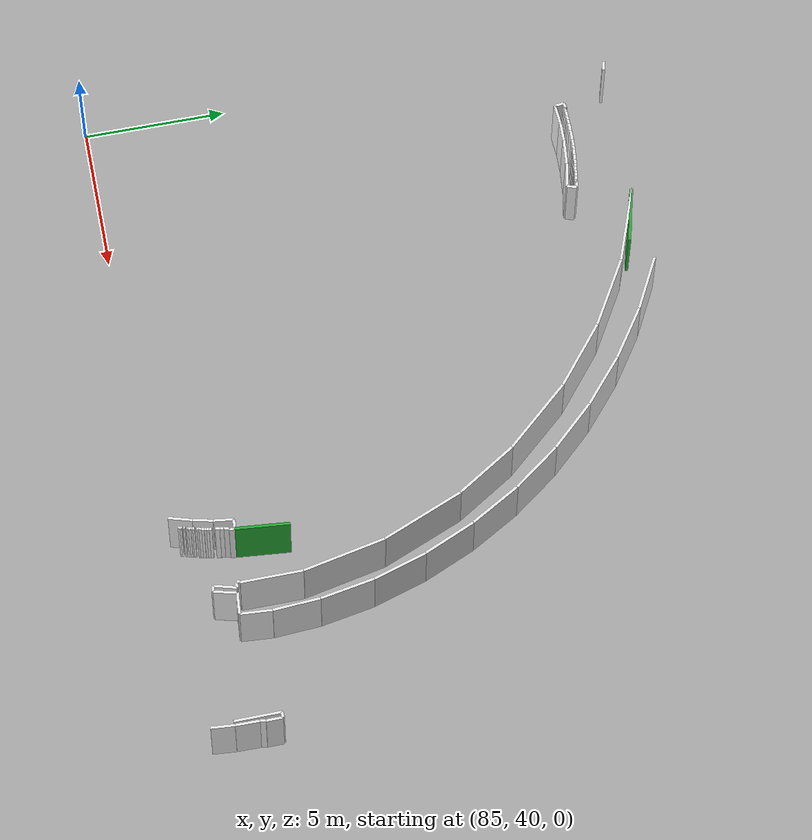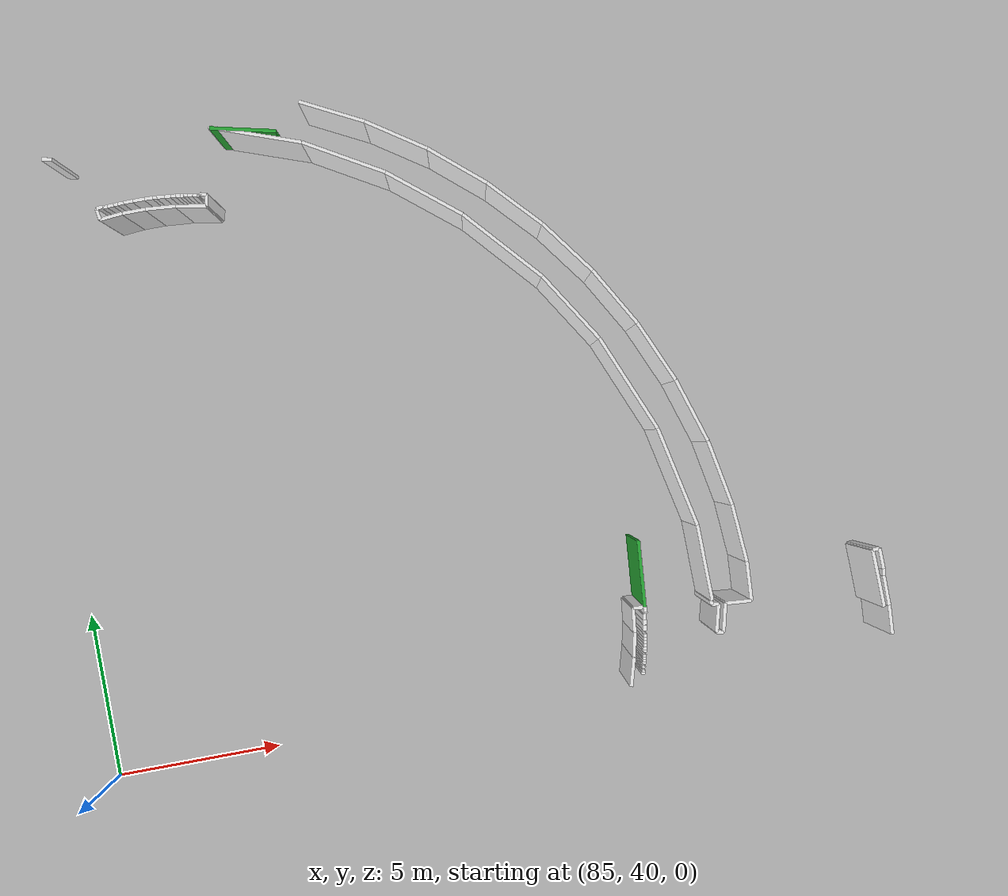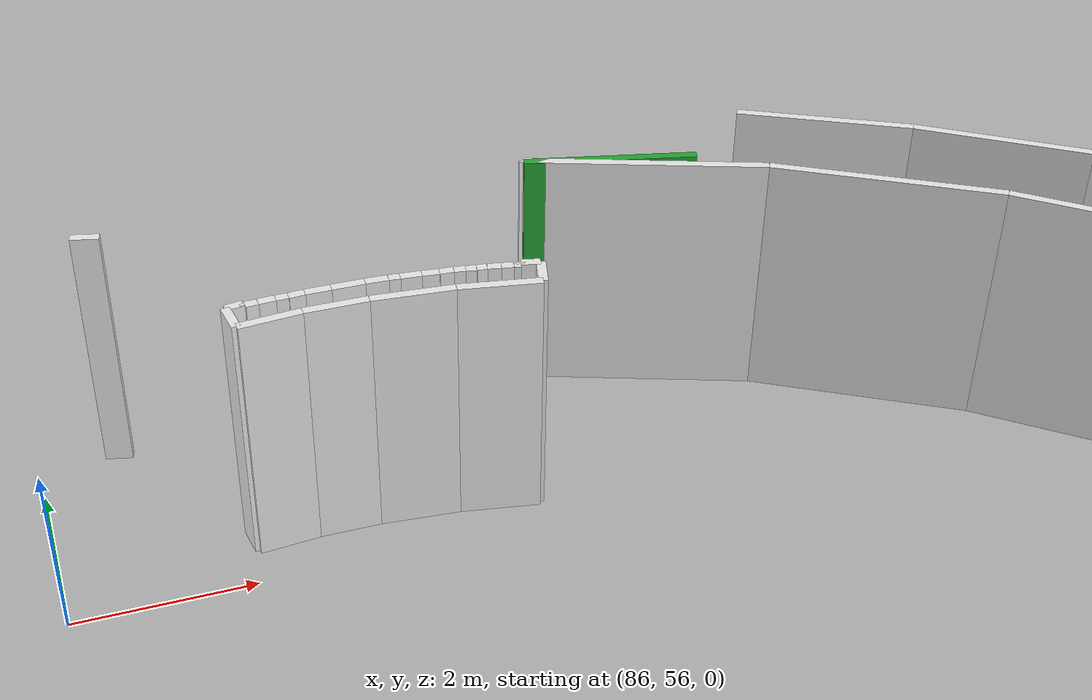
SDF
<sdf version="1.6">
 <world name="default">
  <model name="wall_101.7_43.5_1.5">
   <static>true</static>
   <pose>101.71999999985565 43.53499999991618 1.5 0 0 1.4880839115168225</pose>
   <link name="link">
    <visual name="visual">
     <geometry><box><size>1.936620768386458 0.1 3</size></box></geometry>
     <material>
      <script><uri>file://media/materials/scripts/gazebo.material</uri><name>Gazebo/Green</name></script>
     </material>
    </visual>
    <collision name="collision"><geometry><box><size>1.936620768386458 0.1 3</size></box></geometry></collision>
   </link>
  </model>
  <model name="wall_92.6_58.3_1.5">
   <static>true</static>
   <pose>92.64999999996508 58.31499999971129 1.5 0 0 -0.22485559369904828</pose>
   <link name="link">
    <visual name="visual">
     <geometry><box><size>1.9285486770429094 0.1 3</size></box></geometry>
     <material>
      <script><uri>file://media/materials/scripts/gazebo.material</uri><name>Gazebo/Green</name></script>
     </material>
    </visual>
    <collision name="collision"><geometry><box><size>1.9285486770429094 0.1 3</size></box></geometry></collision>
   </link>
  </model>
  <model name="wall_101.2_40.7_1.5">
   <static>true</static>
   <pose>101.25 40.69000000017695 1.5 0 0 1.2490457723982544</pose>
   <link name="link">
    <visual name="visual">
     <geometry><box><size>0.06324555326226959 0.1 3</size></box></geometry>
     <material>
      <script><uri>file://media/materials/scripts/gazebo.material</uri><name>Gazebo/White</name></script>
     </material>
    </visual>
    <collision name="collision"><geometry><box><size>0.06324555326226959 0.1 3</size></box></geometry></collision>
   </link>
  </model>
  <model name="wall_101.3_40.8_1.5">
   <static>true</static>
   <pose>101.27000000001863 40.75 1.5 0 0 1.249045770069948</pose>
   <link name="link">
    <visual name="visual">
     <geometry><box><size>0.06324555282050451 0.1 3</size></box></geometry>
     <material>
      <script><uri>file://media/materials/scripts/gazebo.material</uri><name>Gazebo/White</name></script>
     </material>
    </visual>
    <collision name="collision"><geometry><box><size>0.06324555282050451 0.1 3</size></box></geometry></collision>
   </link>
  </model>
  <model name="wall_101.3_40.9_1.5">
   <static>true</static>
   <pose>101.29999999998836 40.860000000102445 1.5 0 0 1.2490457723982544</pose>
   <link name="link">
    <visual name="visual">
     <geometry><box><size>0.06324555326226959 0.1 3</size></box></geometry>
     <material>
      <script><uri>file://media/materials/scripts/gazebo.material</uri><name>Gazebo/White</name></script>
     </material>
    </visual>
    <collision name="collision"><geometry><box><size>0.06324555326226959 0.1 3</size></box></geometry></collision>
   </link>
  </model>
  <model name="wall_101.3_41.0_1.5">
   <static>true</static>
   <pose>101.3300000000163 40.97999999998137 1.5 0 0 1.249045770069948</pose>
   <link name="link">
    <visual name="visual">
     <geometry><box><size>0.06324555282050451 0.1 3</size></box></geometry>
     <material>
      <script><uri>file://media/materials/scripts/gazebo.material</uri><name>Gazebo/White</name></script>
     </material>
    </visual>
    <collision name="collision"><geometry><box><size>0.06324555282050451 0.1 3</size></box></geometry></collision>
   </link>
  </model>
  <model name="wall_101.4_41.0_1.5">
   <static>true</static>
   <pose>101.35000000000582 41.044999999925494 1.5 0 0 1.2924966694371718</pose>
   <link name="link">
    <visual name="visual">
     <geometry><box><size>0.07280109916848786 0.1 3</size></box></geometry>
     <material>
      <script><uri>file://media/materials/scripts/gazebo.material</uri><name>Gazebo/White</name></script>
     </material>
    </visual>
    <collision name="collision"><geometry><box><size>0.07280109916848786 0.1 3</size></box></geometry></collision>
   </link>
  </model>
  <model name="wall_101.4_41.1_1.5">
   <static>true</static>
   <pose>101.36499999999069 41.110000000102445 1.5 0 0 1.4056476493802699</pose>
   <link name="link">
    <visual name="visual">
     <geometry><box><size>0.060827625359632334 0.1 3</size></box></geometry>
     <material>
      <script><uri>file://media/materials/scripts/gazebo.material</uri><name>Gazebo/White</name></script>
     </material>
    </visual>
    <collision name="collision">
     <geometry><box><size>0.060827625359632334 0.1 3</size></box></geometry>
    </collision>
   </link>
  </model>
  <model name="wall_101.4_41.2_1.5">
   <static>true</static>
   <pose>101.38000000000466 41.175000000046566 1.5 0 0 1.292496666911179</pose>
   <link name="link">
    <visual name="visual">
     <geometry><box><size>0.07280109873673425 0.1 3</size></box></geometry>
     <material>
      <script><uri>file://media/materials/scripts/gazebo.material</uri><name>Gazebo/White</name></script>
     </material>
    </visual>
    <collision name="collision"><geometry><box><size>0.07280109873673425 0.1 3</size></box></geometry></collision>
   </link>
  </model>
  <model name="wall_101.4_41.3_1.5">
   <static>true</static>
   <pose>101.41499999997905 41.31499999994412 1.5 0 0 1.428899272656394</pose>
   <link name="link">
    <visual name="visual">
     <geometry><box><size>0.07071067841499978 0.1 3</size></box></geometry>
     <material>
      <script><uri>file://media/materials/scripts/gazebo.material</uri><name>Gazebo/White</name></script>
     </material>
    </visual>
    <collision name="collision"><geometry><box><size>0.07071067841499978 0.1 3</size></box></geometry></collision>
   </link>
  </model>
  <model name="wall_101.4_41.4_1.5">
   <static>true</static>
   <pose>101.42999999999302 41.39500000001863 1.5 0 0 1.3521273803731177</pose>
   <link name="link">
    <visual name="visual">
     <geometry><box><size>0.0921954444315063 0.1 3</size></box></geometry>
     <material>
      <script><uri>file://media/materials/scripts/gazebo.material</uri><name>Gazebo/White</name></script>
     </material>
    </visual>
    <collision name="collision"><geometry><box><size>0.0921954444315063 0.1 3</size></box></geometry></collision>
   </link>
  </model>
  <model name="wall_101.5_41.5_1.5">
   <static>true</static>
   <pose>101.45000000001164 41.484999999869615 1.5 0 0 1.3521273803731177</pose>
   <link name="link">
    <visual name="visual">
     <geometry><box><size>0.0921954444315063 0.1 3</size></box></geometry>
     <material>
      <script><uri>file://media/materials/scripts/gazebo.material</uri><name>Gazebo/White</name></script>
     </material>
    </visual>
    <collision name="collision"><geometry><box><size>0.0921954444315063 0.1 3</size></box></geometry></collision>
   </link>
  </model>
  <model name="wall_101.5_41.6_1.5">
   <static>true</static>
   <pose>101.46499999999651 41.56999999983236 1.5 0 0 1.4464413329645371</pose>
   <link name="link">
    <visual name="visual">
     <geometry><box><size>0.08062257755085135 0.1 3</size></box></geometry>
     <material>
      <script><uri>file://media/materials/scripts/gazebo.material</uri><name>Gazebo/White</name></script>
     </material>
    </visual>
    <collision name="collision"><geometry><box><size>0.08062257755085135 0.1 3</size></box></geometry></collision>
   </link>
  </model>
  <model name="wall_101.5_41.7_1.5">
   <static>true</static>
   <pose>101.47999999998137 41.65500000002794 1.5 0 0 1.3521273814687915</pose>
   <link name="link">
    <visual name="visual">
     <geometry><box><size>0.09219544488607884 0.1 3</size></box></geometry>
     <material>
      <script><uri>file://media/materials/scripts/gazebo.material</uri><name>Gazebo/White</name></script>
     </material>
    </visual>
    <collision name="collision"><geometry><box><size>0.09219544488607884 0.1 3</size></box></geometry></collision>
   </link>
  </model>
  <model name="wall_101.5_41.8_1.5">
   <static>true</static>
   <pose>101.5 41.75 1.5 0 0 1.3734007660495133</pose>
   <link name="link">
    <visual name="visual">
     <geometry><box><size>0.10198038991021388 0.1 3</size></box></geometry>
     <material>
      <script><uri>file://media/materials/scripts/gazebo.material</uri><name>Gazebo/White</name></script>
     </material>
    </visual>
    <collision name="collision"><geometry><box><size>0.10198038991021388 0.1 3</size></box></geometry></collision>
   </link>
  </model>
  <model name="wall_101.5_42.0_1.5">
   <static>true</static>
   <pose>101.53500000000349 41.97999999998137 1.5 0 0 1.3854483771506443</pose>
   <link name="link">
    <visual name="visual">
     <geometry><box><size>0.16278820610187839 0.1 3</size></box></geometry>
     <material>
      <script><uri>file://media/materials/scripts/gazebo.material</uri><name>Gazebo/White</name></script>
     </material>
    </visual>
    <collision name="collision"><geometry><box><size>0.16278820610187839 0.1 3</size></box></geometry></collision>
   </link>
  </model>
  <model name="wall_101.6_42.1_1.5">
   <static>true</static>
   <pose>101.55999999999767 42.13000000012107 1.5 0 0 1.4288992721907328</pose>
   <link name="link">
    <visual name="visual">
     <geometry><box><size>0.1414213563690184 0.1 3</size></box></geometry>
     <material>
      <script><uri>file://media/materials/scripts/gazebo.material</uri><name>Gazebo/White</name></script>
     </material>
    </visual>
    <collision name="collision"><geometry><box><size>0.1414213563690184 0.1 3</size></box></geometry></collision>
   </link>
  </model>
  <model name="wall_101.6_42.3_1.5">
   <static>true</static>
   <pose>101.5800000000163 42.29000000003725 1.5 0 0 1.4601391053370611</pose>
   <link name="link">
    <visual name="visual">
     <geometry><box><size>0.18110770246860486 0.1 3</size></box></geometry>
     <material>
      <script><uri>file://media/materials/scripts/gazebo.material</uri><name>Gazebo/White</name></script>
     </material>
    </visual>
    <collision name="collision"><geometry><box><size>0.18110770246860486 0.1 3</size></box></geometry></collision>
   </link>
  </model>
  <model name="wall_101.6_42.4_1.5">
   <static>true</static>
   <pose>101.61000000001513 42.375 1.5 0 0 -0.24497865799089408</pose>
   <link name="link">
    <visual name="visual">
     <geometry><box><size>0.04123105618163657 0.1 3</size></box></geometry>
     <material>
      <script><uri>file://media/materials/scripts/gazebo.material</uri><name>Gazebo/White</name></script>
     </material>
    </visual>
    <collision name="collision"><geometry><box><size>0.04123105618163657 0.1 3</size></box></geometry></collision>
   </link>
  </model>
  <model name="wall_101.6_42.5_1.5">
   <static>true</static>
   <pose>101.63500000000931 42.46999999997206 1.5 0 0 1.520837930956829</pose>
   <link name="link">
    <visual name="visual">
     <geometry><box><size>0.20024984366642476 0.1 3</size></box></geometry>
     <material>
      <script><uri>file://media/materials/scripts/gazebo.material</uri><name>Gazebo/White</name></script>
     </material>
    </visual>
    <collision name="collision"><geometry><box><size>0.20024984366642476 0.1 3</size></box></geometry></collision>
   </link>
  </model>
  <model name="wall_103.6_42.4_1.5">
   <static>true</static>
   <pose>103.56500000000233 42.35000000009313 1.5 0 0 -1.6539375586833378</pose>
   <link name="link">
    <visual name="visual">
     <geometry><box><size>0.12041594590006904 0.1 3</size></box></geometry>
     <material>
      <script><uri>file://media/materials/scripts/gazebo.material</uri><name>Gazebo/White</name></script>
     </material>
    </visual>
    <collision name="collision"><geometry><box><size>0.12041594590006904 0.1 3</size></box></geometry></collision>
   </link>
  </model>
  <model name="wall_103.7_42.3_1.5">
   <static>true</static>
   <pose>103.66500000000815 42.28499999991618 1.5 0 0 -0.0475831044226998</pose>
   <link name="link">
    <visual name="visual">
     <geometry><box><size>0.21023796044873502 0.1 3</size></box></geometry>
     <material>
      <script><uri>file://media/materials/scripts/gazebo.material</uri><name>Gazebo/White</name></script>
     </material>
    </visual>
    <collision name="collision"><geometry><box><size>0.21023796044873502 0.1 3</size></box></geometry></collision>
   </link>
  </model>
  <model name="wall_103.7_41.9_1.5">
   <static>true</static>
   <pose>103.66500000000815 41.87999999988824 1.5 0 0 -1.8275046573099654</pose>
   <link name="link">
    <visual name="visual">
     <geometry><box><size>0.8271033790952481 0.1 3</size></box></geometry>
     <material>
      <script><uri>file://media/materials/scripts/gazebo.material</uri><name>Gazebo/White</name></script>
     </material>
    </visual>
    <collision name="collision"><geometry><box><size>0.8271033790952481 0.1 3</size></box></geometry></collision>
   </link>
  </model>
  <model name="wall_91.1_56.7_1.5">
   <static>true</static>
   <pose>91.07500000001164 56.68000000016764 1.5 0 0 1.3258176636680326</pose>
   <link name="link">
    <visual name="visual">
     <geometry><box><size>0.04123105629457602 0.1 3</size></box></geometry>
     <material>
      <script><uri>file://media/materials/scripts/gazebo.material</uri><name>Gazebo/White</name></script>
     </material>
    </visual>
    <collision name="collision"><geometry><box><size>0.04123105629457602 0.1 3</size></box></geometry></collision>
   </link>
  </model>
  <model name="wall_91.2_56.7_1.5">
   <static>true</static>
   <pose>91.18000000002212 56.675000000046566 1.5 0 0 -0.24497866442797658</pose>
   <link name="link">
    <visual name="visual">
     <geometry><box><size>0.20615528135994066 0.1 3</size></box></geometry>
     <material>
      <script><uri>file://media/materials/scripts/gazebo.material</uri><name>Gazebo/White</name></script>
     </material>
    </visual>
    <collision name="collision"><geometry><box><size>0.20615528135994066 0.1 3</size></box></geometry></collision>
   </link>
  </model>
  <model name="wall_88.1_56.8_1.5">
   <static>true</static>
   <pose>88.14499999998952 56.83499999996275 1.5 0 0 0.15660187831921837</pose>
   <link name="link">
    <visual name="visual">
     <geometry><box><size>0.19235384065968367 0.1 3</size></box></geometry>
     <material>
      <script><uri>file://media/materials/scripts/gazebo.material</uri><name>Gazebo/White</name></script>
     </material>
    </visual>
    <collision name="collision"><geometry><box><size>0.19235384065968367 0.1 3</size></box></geometry></collision>
   </link>
  </model>
  <model name="wall_88.2_56.8_1.5">
   <static>true</static>
   <pose>88.24499999999534 56.83499999996275 1.5 0 0 -1.2490457747265609</pose>
   <link name="link">
    <visual name="visual">
     <geometry><box><size>0.031622776852017344 0.1 3</size></box></geometry>
     <material>
      <script><uri>file://media/materials/scripts/gazebo.material</uri><name>Gazebo/White</name></script>
     </material>
    </visual>
    <collision name="collision">
     <geometry><box><size>0.031622776852017344 0.1 3</size></box></geometry>
    </collision>
   </link>
  </model>
  <model name="wall_88.3_56.8_1.5">
   <static>true</static>
   <pose>88.31500000000233 56.824999999953434 1.5 0 0 0.07677189311872727</pose>
   <link name="link">
    <visual name="visual">
     <geometry><box><size>0.13038404812726748 0.1 3</size></box></geometry>
     <material>
      <script><uri>file://media/materials/scripts/gazebo.material</uri><name>Gazebo/White</name></script>
     </material>
    </visual>
    <collision name="collision"><geometry><box><size>0.13038404812726748 0.1 3</size></box></geometry></collision>
   </link>
  </model>
  <model name="wall_88.5_56.8_1.5">
   <static>true</static>
   <pose>88.47000000000116 56.83499999996275 1.5 0 0 0.05549850400992342</pose>
   <link name="link">
    <visual name="visual">
     <geometry><box><size>0.18027756375382678 0.1 3</size></box></geometry>
     <material>
      <script><uri>file://media/materials/scripts/gazebo.material</uri><name>Gazebo/White</name></script>
     </material>
    </visual>
    <collision name="collision"><geometry><box><size>0.18027756375382678 0.1 3</size></box></geometry></collision>
   </link>
  </model>
  <model name="wall_88.6_56.8_1.5">
   <static>true</static>
   <pose>88.625 56.83999999985099 1.5 0 0 0.0</pose>
   <link name="link">
    <visual name="visual">
     <geometry><box><size>0.1300000000046566 0.1 3</size></box></geometry>
     <material>
      <script><uri>file://media/materials/scripts/gazebo.material</uri><name>Gazebo/White</name></script>
     </material>
    </visual>
    <collision name="collision"><geometry><box><size>0.1300000000046566 0.1 3</size></box></geometry></collision>
   </link>
  </model>
  <model name="wall_88.8_56.8_1.5">
   <static>true</static>
   <pose>88.77499999999418 56.84499999997206 1.5 0 0 0.0587558241408068</pose>
   <link name="link">
    <visual name="visual">
     <geometry><box><size>0.17029386365721316 0.1 3</size></box></geometry>
     <material>
      <script><uri>file://media/materials/scripts/gazebo.material</uri><name>Gazebo/White</name></script>
     </material>
    </visual>
    <collision name="collision"><geometry><box><size>0.17029386365721316 0.1 3</size></box></geometry></collision>
   </link>
  </model>
  <model name="wall_89.0_56.9_1.5">
   <static>true</static>
   <pose>88.99499999999534 56.85000000009313 1.5 0 0 0.0</pose>
   <link name="link">
    <visual name="visual">
     <geometry><box><size>0.27000000001862645 0.1 3</size></box></geometry>
     <material>
      <script><uri>file://media/materials/scripts/gazebo.material</uri><name>Gazebo/White</name></script>
     </material>
    </visual>
    <collision name="collision"><geometry><box><size>0.27000000001862645 0.1 3</size></box></geometry></collision>
   </link>
  </model>
  <model name="wall_89.3_56.9_1.5">
   <static>true</static>
   <pose>89.30499999999302 56.85000000009313 1.5 0 0 0.0</pose>
   <link name="link">
    <visual name="visual">
     <geometry><box><size>0.34999999997671694 0.1 3</size></box></geometry>
     <material>
      <script><uri>file://media/materials/scripts/gazebo.material</uri><name>Gazebo/White</name></script>
     </material>
    </visual>
    <collision name="collision"><geometry><box><size>0.34999999997671694 0.1 3</size></box></geometry></collision>
   </link>
  </model>
  <model name="wall_89.6_56.8_1.5">
   <static>true</static>
   <pose>89.59999999997672 56.84499999997206 1.5 0 0 -0.04164258010738671</pose>
   <link name="link">
    <visual name="visual">
     <geometry><box><size>0.24020824299006172 0.1 3</size></box></geometry>
     <material>
      <script><uri>file://media/materials/scripts/gazebo.material</uri><name>Gazebo/White</name></script>
     </material>
    </visual>
    <collision name="collision"><geometry><box><size>0.24020824299006172 0.1 3</size></box></geometry></collision>
   </link>
  </model>
  <model name="wall_89.8_56.8_1.5">
   <static>true</static>
   <pose>89.77999999999884 56.83499999996275 1.5 0 0 -0.08314123000171016</pose>
   <link name="link">
    <visual name="visual">
     <geometry><box><size>0.12041594582272691 0.1 3</size></box></geometry>
     <material>
      <script><uri>file://media/materials/scripts/gazebo.material</uri><name>Gazebo/White</name></script>
     </material>
    </visual>
    <collision name="collision"><geometry><box><size>0.12041594582272691 0.1 3</size></box></geometry></collision>
   </link>
  </model>
  <model name="wall_90.0_56.8_1.5">
   <static>true</static>
   <pose>89.95000000001164 56.82000000006519 1.5 0 0 -0.0906598872961675</pose>
   <link name="link">
    <visual name="visual">
     <geometry><box><size>0.22090722031760665 0.1 3</size></box></geometry>
     <material>
      <script><uri>file://media/materials/scripts/gazebo.material</uri><name>Gazebo/White</name></script>
     </material>
    </visual>
    <collision name="collision"><geometry><box><size>0.22090722031760665 0.1 3</size></box></geometry></collision>
   </link>
  </model>
  <model name="wall_90.1_56.8_1.5">
   <static>true</static>
   <pose>90.14999999999418 56.800000000046566 1.5 0 0 -0.11065722128037307</pose>
   <link name="link">
    <visual name="visual">
     <geometry><box><size>0.1811077027578631 0.1 3</size></box></geometry>
     <material>
      <script><uri>file://media/materials/scripts/gazebo.material</uri><name>Gazebo/White</name></script>
     </material>
    </visual>
    <collision name="collision"><geometry><box><size>0.1811077027578631 0.1 3</size></box></geometry></collision>
   </link>
  </model>
  <model name="wall_90.3_56.8_1.5">
   <static>true</static>
   <pose>90.31500000000233 56.78499999991618 1.5 0 0 -0.06656816537267114</pose>
   <link name="link">
    <visual name="visual">
     <geometry><box><size>0.15033296382306774 0.1 3</size></box></geometry>
     <material>
      <script><uri>file://media/materials/scripts/gazebo.material</uri><name>Gazebo/White</name></script>
     </material>
    </visual>
    <collision name="collision"><geometry><box><size>0.15033296382306774 0.1 3</size></box></geometry></collision>
   </link>
  </model>
  <model name="wall_90.5_56.8_1.5">
   <static>true</static>
   <pose>90.45000000001164 56.769999999785796 1.5 0 0 -0.16514867757194485</pose>
   <link name="link">
    <visual name="visual">
     <geometry><box><size>0.1216552506044333 0.1 3</size></box></geometry>
     <material>
      <script><uri>file://media/materials/scripts/gazebo.material</uri><name>Gazebo/White</name></script>
     </material>
    </visual>
    <collision name="collision"><geometry><box><size>0.1216552506044333 0.1 3</size></box></geometry></collision>
   </link>
  </model>
  <model name="wall_90.6_56.8_1.5">
   <static>true</static>
   <pose>90.56500000000233 56.75 1.5 0 0 -0.17985349588092345</pose>
   <link name="link">
    <visual name="visual">
     <geometry><box><size>0.11180339878127696 0.1 3</size></box></geometry>
     <material>
      <script><uri>file://media/materials/scripts/gazebo.material</uri><name>Gazebo/White</name></script>
     </material>
    </visual>
    <collision name="collision"><geometry><box><size>0.11180339878127696 0.1 3</size></box></geometry></collision>
   </link>
  </model>
  <model name="wall_90.7_56.7_1.5">
   <static>true</static>
   <pose>90.67499999998836 56.735000000102445 1.5 0 0 -0.0906598893954602</pose>
   <link name="link">
    <visual name="visual">
     <geometry><box><size>0.11045361017988281 0.1 3</size></box></geometry>
     <material>
      <script><uri>file://media/materials/scripts/gazebo.material</uri><name>Gazebo/White</name></script>
     </material>
    </visual>
    <collision name="collision"><geometry><box><size>0.11045361017988281 0.1 3</size></box></geometry></collision>
   </link>
  </model>
  <model name="wall_90.8_56.7_1.5">
   <static>true</static>
   <pose>90.79999999998836 56.71500000008382 1.5 0 0 -0.2110933318030475</pose>
   <link name="link">
    <visual name="visual">
     <geometry><box><size>0.14317821060349267 0.1 3</size></box></geometry>
     <material>
      <script><uri>file://media/materials/scripts/gazebo.material</uri><name>Gazebo/White</name></script>
     </material>
    </visual>
    <collision name="collision"><geometry><box><size>0.14317821060349267 0.1 3</size></box></geometry></collision>
   </link>
  </model>
  <model name="wall_90.9_56.7_1.5">
   <static>true</static>
   <pose>90.93499999999767 56.69000000017695 1.5 0 0 -0.15264932852984936</pose>
   <link name="link">
    <visual name="visual">
     <geometry><box><size>0.13152946438709381 0.1 3</size></box></geometry>
     <material>
      <script><uri>file://media/materials/scripts/gazebo.material</uri><name>Gazebo/White</name></script>
     </material>
    </visual>
    <collision name="collision"><geometry><box><size>0.13152946438709381 0.1 3</size></box></geometry></collision>
   </link>
  </model>
  <model name="wall_91.0_56.7_1.5">
   <static>true</static>
   <pose>91.03500000000349 56.670000000158325 1.5 0 0 -0.2782996592247629</pose>
   <link name="link">
    <visual name="visual">
     <geometry><box><size>0.07280109890463843 0.1 3</size></box></geometry>
     <material>
      <script><uri>file://media/materials/scripts/gazebo.material</uri><name>Gazebo/White</name></script>
     </material>
    </visual>
    <collision name="collision"><geometry><box><size>0.07280109890463843 0.1 3</size></box></geometry></collision>
   </link>
  </model>
  <model name="wall_86.9_58.5_1.5">
   <static>true</static>
   <pose>86.88999999998487 58.49499999987893 1.5 0 0 -0.22923193275564116</pose>
   <link name="link">
    <visual name="visual">
     <geometry><box><size>0.30805843596555793 0.1 3</size></box></geometry>
     <material>
      <script><uri>file://media/materials/scripts/gazebo.material</uri><name>Gazebo/White</name></script>
     </material>
    </visual>
    <collision name="collision"><geometry><box><size>0.30805843596555793 0.1 3</size></box></geometry></collision>
   </link>
  </model>
  <model name="wall_88.1_56.7_1.5">
   <static>true</static>
   <pose>88.07499999998254 56.65500000002794 1.5 0 0 -1.4204248986466843</pose>
   <link name="link">
    <visual name="visual">
     <geometry><box><size>0.33376638497708727 0.1 3</size></box></geometry>
     <material>
      <script><uri>file://media/materials/scripts/gazebo.material</uri><name>Gazebo/White</name></script>
     </material>
    </visual>
    <collision name="collision"><geometry><box><size>0.33376638497708727 0.1 3</size></box></geometry></collision>
   </link>
  </model>
  <model name="wall_88.4_56.5_1.5">
   <static>true</static>
   <pose>88.43499999999767 56.52000000001863 1.5 0 0 0.0893139923809162</pose>
   <link name="link">
    <visual name="visual">
     <geometry><box><size>0.6726812023588774 0.1 3</size></box></geometry>
     <material>
      <script><uri>file://media/materials/scripts/gazebo.material</uri><name>Gazebo/White</name></script>
     </material>
    </visual>
    <collision name="collision"><geometry><box><size>0.6726812023588774 0.1 3</size></box></geometry></collision>
   </link>
  </model>
  <model name="wall_89.1_56.5_1.5">
   <static>true</static>
   <pose>89.11000000001513 56.549999999813735 1.5 0 0 0.0</pose>
   <link name="link">
    <visual name="visual">
     <geometry><box><size>0.6799999999930151 0.1 3</size></box></geometry>
     <material>
      <script><uri>file://media/materials/scripts/gazebo.material</uri><name>Gazebo/White</name></script>
     </material>
    </visual>
    <collision name="collision"><geometry><box><size>0.6799999999930151 0.1 3</size></box></geometry></collision>
   </link>
  </model>
  <model name="wall_89.9_56.5_1.5">
   <static>true</static>
   <pose>89.89000000001397 56.514999999897555 1.5 0 0 -0.07937831436985521</pose>
   <link name="link">
    <visual name="visual">
     <geometry><box><size>0.8827797007094841 0.1 3</size></box></geometry>
     <material>
      <script><uri>file://media/materials/scripts/gazebo.material</uri><name>Gazebo/White</name></script>
     </material>
    </visual>
    <collision name="collision"><geometry><box><size>0.8827797007094841 0.1 3</size></box></geometry></collision>
   </link>
  </model>
  <model name="wall_90.8_56.4_1.5">
   <static>true</static>
   <pose>90.76500000001397 56.40500000002794 1.5 0 0 -0.17073521137222075</pose>
   <link name="link">
    <visual name="visual">
     <geometry><box><size>0.882836338153317 0.1 3</size></box></geometry>
     <material>
      <script><uri>file://media/materials/scripts/gazebo.material</uri><name>Gazebo/White</name></script>
     </material>
    </visual>
    <collision name="collision"><geometry><box><size>0.882836338153317 0.1 3</size></box></geometry></collision>
   </link>
  </model>
  <model name="wall_91.2_56.5_1.5">
   <static>true</static>
   <pose>91.24000000001979 56.48999999999069 1.5 0 0 1.3258176634968335</pose>
   <link name="link">
    <visual name="visual">
     <geometry><box><size>0.3298484498907329 0.1 3</size></box></geometry>
     <material>
      <script><uri>file://media/materials/scripts/gazebo.material</uri><name>Gazebo/White</name></script>
     </material>
    </visual>
    <collision name="collision"><geometry><box><size>0.3298484498907329 0.1 3</size></box></geometry></collision>
   </link>
  </model>
  <model name="wall_91.7_58.5_1.5">
   <static>true</static>
   <pose>91.71000000002095 58.544999999925494 1.5 0 0 1.5707963267948966</pose>
   <link name="link">
    <visual name="visual">
     <geometry><box><size>0.03000000026077032 0.1 3</size></box></geometry>
     <material>
      <script><uri>file://media/materials/scripts/gazebo.material</uri><name>Gazebo/White</name></script>
     </material>
    </visual>
    <collision name="collision"><geometry><box><size>0.03000000026077032 0.1 3</size></box></geometry></collision>
   </link>
  </model>
  <model name="wall_93.0_58.1_1.5">
   <static>true</static>
   <pose>92.99000000001979 58.10499999998137 1.5 0 0 -0.34153842534850654</pose>
   <link name="link">
    <visual name="visual">
     <geometry><box><size>2.7169284127962 0.1 3</size></box></geometry>
     <material>
      <script><uri>file://media/materials/scripts/gazebo.material</uri><name>Gazebo/White</name></script>
     </material>
    </visual>
    <collision name="collision"><geometry><box><size>2.7169284127962 0.1 3</size></box></geometry></collision>
   </link>
  </model>
  <model name="wall_95.4_57.0_1.5">
   <static>true</static>
   <pose>95.38500000000931 57.00499999988824 1.5 0 0 -0.5244421648917321</pose>
   <link name="link">
    <visual name="visual">
     <geometry><box><size>2.576237566687715 0.1 3</size></box></geometry>
     <material>
      <script><uri>file://media/materials/scripts/gazebo.material</uri><name>Gazebo/White</name></script>
     </material>
    </visual>
    <collision name="collision"><geometry><box><size>2.576237566687715 0.1 3</size></box></geometry></collision>
   </link>
  </model>
  <model name="wall_97.5_55.6_1.5">
   <static>true</static>
   <pose>97.49499999999534 55.55499999993481 1.5 0 0 -0.6802320401382534</pose>
   <link name="link">
    <visual name="visual">
     <geometry><box><size>2.559726547806053 0.1 3</size></box></geometry>
     <material>
      <script><uri>file://media/materials/scripts/gazebo.material</uri><name>Gazebo/White</name></script>
     </material>
    </visual>
    <collision name="collision"><geometry><box><size>2.559726547806053 0.1 3</size></box></geometry></collision>
   </link>
  </model>
  <model name="wall_99.5_53.7_1.5">
   <static>true</static>
   <pose>99.46499999999651 53.65500000002794 1.5 0 0 -0.8433043686299182</pose>
   <link name="link">
    <visual name="visual">
     <geometry><box><size>2.932336951954985 0.1 3</size></box></geometry>
     <material>
      <script><uri>file://media/materials/scripts/gazebo.material</uri><name>Gazebo/White</name></script>
     </material>
    </visual>
    <collision name="collision"><geometry><box><size>2.932336951954985 0.1 3</size></box></geometry></collision>
   </link>
  </model>
  <model name="wall_101.1_51.5_1.5">
   <static>true</static>
   <pose>101.09500000000116 51.5250000001397 1.5 0 0 -1.0065718003034507</pose>
   <link name="link">
    <visual name="visual">
     <geometry><box><size>2.449693858281046 0.1 3</size></box></geometry>
     <material>
      <script><uri>file://media/materials/scripts/gazebo.material</uri><name>Gazebo/White</name></script>
     </material>
    </visual>
    <collision name="collision"><geometry><box><size>2.449693858281046 0.1 3</size></box></geometry></collision>
   </link>
  </model>
  <model name="wall_102.3_49.1_1.5">
   <static>true</static>
   <pose>102.34500000000116 49.050000000046566 1.5 0 0 -1.1789674300212807</pose>
   <link name="link">
    <visual name="visual">
     <geometry><box><size>3.1161675182897373 0.1 3</size></box></geometry>
     <material>
      <script><uri>file://media/materials/scripts/gazebo.material</uri><name>Gazebo/White</name></script>
     </material>
    </visual>
    <collision name="collision"><geometry><box><size>3.1161675182897373 0.1 3</size></box></geometry></collision>
   </link>
  </model>
  <model name="wall_103.3_46.1_1.5">
   <static>true</static>
   <pose>103.25500000000466 46.125 1.5 0 0 -1.361773383969309</pose>
   <link name="link">
    <visual name="visual">
     <geometry><box><size>3.036083002563812 0.1 3</size></box></geometry>
     <material>
      <script><uri>file://media/materials/scripts/gazebo.material</uri><name>Gazebo/White</name></script>
     </material>
    </visual>
    <collision name="collision"><geometry><box><size>3.036083002563812 0.1 3</size></box></geometry></collision>
   </link>
  </model>
  <model name="wall_103.6_43.5_1.5">
   <static>true</static>
   <pose>103.58499999999185 43.5250000001397 1.5 0 0 -1.5573442234956494</pose>
   <link name="link">
    <visual name="visual">
     <geometry><box><size>2.230201784573564 0.1 3</size></box></geometry>
     <material>
      <script><uri>file://media/materials/scripts/gazebo.material</uri><name>Gazebo/White</name></script>
     </material>
    </visual>
    <collision name="collision"><geometry><box><size>2.230201784573564 0.1 3</size></box></geometry></collision>
   </link>
  </model>
  <model name="wall_101.5_42.6_1.5">
   <static>true</static>
   <pose>101.47000000000116 42.58499999996275 1.5 0 0 3.053585279307601</pose>
   <link name="link">
    <visual name="visual">
     <geometry><box><size>0.3413209633659526 0.1 3</size></box></geometry>
     <material>
      <script><uri>file://media/materials/scripts/gazebo.material</uri><name>Gazebo/White</name></script>
     </material>
    </visual>
    <collision name="collision"><geometry><box><size>0.3413209633659526 0.1 3</size></box></geometry></collision>
   </link>
  </model>
  <model name="wall_101.3_42.2_1.5">
   <static>true</static>
   <pose>101.25999999998021 42.24500000011176 1.5 0 0 -1.6829991418206562</pose>
   <link name="link">
    <visual name="visual">
     <geometry><box><size>0.7144928270806562 0.1 3</size></box></geometry>
     <material>
      <script><uri>file://media/materials/scripts/gazebo.material</uri><name>Gazebo/White</name></script>
     </material>
    </visual>
    <collision name="collision"><geometry><box><size>0.7144928270806562 0.1 3</size></box></geometry></collision>
   </link>
  </model>
  <model name="wall_101.1_41.5_1.5">
   <static>true</static>
   <pose>101.14499999998952 41.54000000003725 1.5 0 0 -1.7818896599154248</pose>
   <link name="link">
    <visual name="visual">
     <geometry><box><size>0.7158910533386299 0.1 3</size></box></geometry>
     <material>
      <script><uri>file://media/materials/scripts/gazebo.material</uri><name>Gazebo/White</name></script>
     </material>
    </visual>
    <collision name="collision"><geometry><box><size>0.7158910533386299 0.1 3</size></box></geometry></collision>
   </link>
  </model>
  <model name="wall_101.0_40.8_1.5">
   <static>true</static>
   <pose>100.9550000000163 40.78000000002794 1.5 0 0 -1.8442573139172422</pose>
   <link name="link">
    <visual name="visual">
     <geometry><box><size>0.8516454659754289 0.1 3</size></box></geometry>
     <material>
      <script><uri>file://media/materials/scripts/gazebo.material</uri><name>Gazebo/White</name></script>
     </material>
    </visual>
    <collision name="collision"><geometry><box><size>0.8516454659754289 0.1 3</size></box></geometry></collision>
   </link>
  </model>
  <model name="wall_108.7_42.7_1.5">
   <static>true</static>
   <pose>108.65499999999884 42.71999999997206 1.5 0 0 1.587461450424783</pose>
   <link name="link">
    <visual name="visual">
     <geometry><box><size>0.6000833276394044 0.1 3</size></box></geometry>
     <material>
      <script><uri>file://media/materials/scripts/gazebo.material</uri><name>Gazebo/White</name></script>
     </material>
    </visual>
    <collision name="collision"><geometry><box><size>0.6000833276394044 0.1 3</size></box></geometry></collision>
   </link>
  </model>
  <model name="wall_108.6_43.0_1.5">
   <static>true</static>
   <pose>108.55000000001746 43.014999999897555 1.5 0 0 -3.0916342566630535</pose>
   <link name="link">
    <visual name="visual">
     <geometry><box><size>0.20024984396872697 0.1 3</size></box></geometry>
     <material>
      <script><uri>file://media/materials/scripts/gazebo.material</uri><name>Gazebo/White</name></script>
     </material>
    </visual>
    <collision name="collision"><geometry><box><size>0.20024984396872697 0.1 3</size></box></geometry></collision>
   </link>
  </model>
  <model name="wall_108.5_42.2_1.5">
   <static>true</static>
   <pose>108.46499999999651 42.169999999925494 1.5 0 0 -1.5529410816701883</pose>
   <link name="link">
    <visual name="visual">
     <geometry><box><size>1.6802678354943374 0.1 3</size></box></geometry>
     <material>
      <script><uri>file://media/materials/scripts/gazebo.material</uri><name>Gazebo/White</name></script>
     </material>
    </visual>
    <collision name="collision"><geometry><box><size>1.6802678354943374 0.1 3</size></box></geometry></collision>
   </link>
  </model>
  <model name="wall_103.7_41.5_1.5">
   <static>true</static>
   <pose>103.66000000000349 41.45999999996275 1.5 0 0 -0.19739556001778746</pose>
   <link name="link">
    <visual name="visual">
     <geometry><box><size>0.20396078056243275 0.1 3</size></box></geometry>
     <material>
      <script><uri>file://media/materials/scripts/gazebo.material</uri><name>Gazebo/White</name></script>
     </material>
    </visual>
    <collision name="collision"><geometry><box><size>0.20396078056243275 0.1 3</size></box></geometry></collision>
   </link>
  </model>
  <model name="wall_103.9_41.8_1.5">
   <static>true</static>
   <pose>103.86000000001513 41.8499999998603 1.5 0 0 1.3315647267707733</pose>
   <link name="link">
    <visual name="visual">
     <geometry><box><size>0.8440379136802625 0.1 3</size></box></geometry>
     <material>
      <script><uri>file://media/materials/scripts/gazebo.material</uri><name>Gazebo/White</name></script>
     </material>
    </visual>
    <collision name="collision"><geometry><box><size>0.8440379136802625 0.1 3</size></box></geometry></collision>
   </link>
  </model>
  <model name="wall_104.3_42.2_1.5">
   <static>true</static>
   <pose>104.33999999999651 42.22999999998137 1.5 0 0 -0.07878396045834442</pose>
   <link name="link">
    <visual name="visual">
     <geometry><box><size>0.762364742020843 0.1 3</size></box></geometry>
     <material>
      <script><uri>file://media/materials/scripts/gazebo.material</uri><name>Gazebo/White</name></script>
     </material>
    </visual>
    <collision name="collision"><geometry><box><size>0.762364742020843 0.1 3</size></box></geometry></collision>
   </link>
  </model>
  <model name="wall_104.8_42.8_1.5">
   <static>true</static>
   <pose>104.75499999997555 42.77000000001863 1.5 0 0 1.509469815630436</pose>
   <link name="link">
    <visual name="visual">
     <geometry><box><size>1.1421471005245114 0.1 3</size></box></geometry>
     <material>
      <script><uri>file://media/materials/scripts/gazebo.material</uri><name>Gazebo/White</name></script>
     </material>
    </visual>
    <collision name="collision"><geometry><box><size>1.1421471005245114 0.1 3</size></box></geometry></collision>
   </link>
  </model>
  <model name="wall_104.7_44.2_1.5">
   <static>true</static>
   <pose>104.72999999998137 44.18999999994412 1.5 0 0 1.6412676713632708</pose>
   <link name="link">
    <visual name="visual">
     <geometry><box><size>1.7042300316072891 0.1 3</size></box></geometry>
     <material>
      <script><uri>file://media/materials/scripts/gazebo.material</uri><name>Gazebo/White</name></script>
     </material>
    </visual>
    <collision name="collision"><geometry><box><size>1.7042300316072891 0.1 3</size></box></geometry></collision>
   </link>
  </model>
  <model name="wall_104.5_46.0_1.5">
   <static>true</static>
   <pose>104.48999999999069 46.015000000130385 1.5 0 0 1.7533561799018222</pose>
   <link name="link">
    <visual name="visual">
     <geometry><box><size>1.982952344539922 0.1 3</size></box></geometry>
     <material>
      <script><uri>file://media/materials/scripts/gazebo.material</uri><name>Gazebo/White</name></script>
     </material>
    </visual>
    <collision name="collision"><geometry><box><size>1.982952344539922 0.1 3</size></box></geometry></collision>
   </link>
  </model>
  <model name="wall_104.0_47.9_1.5">
   <static>true</static>
   <pose>104.01000000000931 47.94500000006519 1.5 0 0 1.8751710629953546</pose>
   <link name="link">
    <visual name="visual">
     <geometry><box><size>2.002023975571336 0.1 3</size></box></geometry>
     <material>
      <script><uri>file://media/materials/scripts/gazebo.material</uri><name>Gazebo/White</name></script>
     </material>
    </visual>
    <collision name="collision"><geometry><box><size>2.002023975571336 0.1 3</size></box></geometry></collision>
   </link>
  </model>
  <model name="wall_103.3_49.8_1.5">
   <static>true</static>
   <pose>103.30999999999767 49.81499999994412 1.5 0 0 1.9829200711588533</pose>
   <link name="link">
    <visual name="visual">
     <geometry><box><size>1.9972230722548738 0.1 3</size></box></geometry>
     <material>
      <script><uri>file://media/materials/scripts/gazebo.material</uri><name>Gazebo/White</name></script>
     </material>
    </visual>
    <collision name="collision"><geometry><box><size>1.9972230722548738 0.1 3</size></box></geometry></collision>
   </link>
  </model>
  <model name="wall_102.4_51.6_1.5">
   <static>true</static>
   <pose>102.40999999997439 51.59499999997206 1.5 0 0 2.0949082599421773</pose>
   <link name="link">
    <visual name="visual">
     <geometry><box><size>1.9982242116278024 0.1 3</size></box></geometry>
     <material>
      <script><uri>file://media/materials/scripts/gazebo.material</uri><name>Gazebo/White</name></script>
     </material>
    </visual>
    <collision name="collision"><geometry><box><size>1.9982242116278024 0.1 3</size></box></geometry></collision>
   </link>
  </model>
  <model name="wall_101.3_53.3_1.5">
   <static>true</static>
   <pose>101.31499999997322 53.26000000000931 1.5 0 0 2.210285420979203</pose>
   <link name="link">
    <visual name="visual">
     <geometry><box><size>1.9940160481559732 0.1 3</size></box></geometry>
     <material>
      <script><uri>file://media/materials/scripts/gazebo.material</uri><name>Gazebo/White</name></script>
     </material>
    </visual>
    <collision name="collision"><geometry><box><size>1.9940160481559732 0.1 3</size></box></geometry></collision>
   </link>
  </model>
  <model name="wall_100.0_54.8_1.5">
   <static>true</static>
   <pose>100.03499999997439 54.79000000003725 1.5 0 0 2.3244030848489046</pose>
   <link name="link">
    <visual name="visual">
     <geometry><box><size>2.00212387226127 0.1 3</size></box></geometry>
     <material>
      <script><uri>file://media/materials/scripts/gazebo.material</uri><name>Gazebo/White</name></script>
     </material>
    </visual>
    <collision name="collision"><geometry><box><size>2.00212387226127 0.1 3</size></box></geometry></collision>
   </link>
  </model>
  <model name="wall_98.6_56.2_1.5">
   <static>true</static>
   <pose>98.58999999999651 56.16500000003725 1.5 0 0 2.4378629690684206</pose>
   <link name="link">
    <visual name="visual">
     <geometry><box><size>1.9936148073225644 0.1 3</size></box></geometry>
     <material>
      <script><uri>file://media/materials/scripts/gazebo.material</uri><name>Gazebo/White</name></script>
     </material>
    </visual>
    <collision name="collision"><geometry><box><size>1.9936148073225644 0.1 3</size></box></geometry></collision>
   </link>
  </model>
  <model name="wall_97.0_57.4_1.5">
   <static>true</static>
   <pose>97.0 57.36499999999069 1.5 0 0 2.552201162109747</pose>
   <link name="link">
    <visual name="visual">
     <geometry><box><size>1.9969226324068652 0.1 3</size></box></geometry>
     <material>
      <script><uri>file://media/materials/scripts/gazebo.material</uri><name>Gazebo/White</name></script>
     </material>
    </visual>
    <collision name="collision"><geometry><box><size>1.9969226324068652 0.1 3</size></box></geometry></collision>
   </link>
  </model>
  <model name="wall_95.3_58.4_1.5">
   <static>true</static>
   <pose>95.27999999999884 58.375 1.5 0 0 2.668996737498951</pose>
   <link name="link">
    <visual name="visual">
     <geometry><box><size>1.9991248085508437 0.1 3</size></box></geometry>
     <material>
      <script><uri>file://media/materials/scripts/gazebo.material</uri><name>Gazebo/White</name></script>
     </material>
    </visual>
    <collision name="collision"><geometry><box><size>1.9991248085508437 0.1 3</size></box></geometry></collision>
   </link>
  </model>
  <model name="wall_108.6_40.9_1.5">
   <static>true</static>
   <pose>108.60000000000582 40.92999999993481 1.5 0 0 1.4994888620391533</pose>
   <link name="link">
    <visual name="visual">
     <geometry><box><size>0.8421401311727711 0.1 3</size></box></geometry>
     <material>
      <script><uri>file://media/materials/scripts/gazebo.material</uri><name>Gazebo/White</name></script>
     </material>
    </visual>
    <collision name="collision"><geometry><box><size>0.8421401311727711 0.1 3</size></box></geometry></collision>
   </link>
  </model>
  <model name="wall_108.6_41.8_1.5">
   <static>true</static>
   <pose>108.63000000000466 41.78500000014901 1.5 0 0 1.5707963267948966</pose>
   <link name="link">
    <visual name="visual">
     <geometry><box><size>0.8700000001117587 0.1 3</size></box></geometry>
     <material>
      <script><uri>file://media/materials/scripts/gazebo.material</uri><name>Gazebo/White</name></script>
     </material>
    </visual>
    <collision name="collision"><geometry><box><size>0.8700000001117587 0.1 3</size></box></geometry></collision>
   </link>
  </model>
  <model name="wall_108.6_42.3_1.5">
   <static>true</static>
   <pose>108.64499999998952 42.32000000006519 1.5 0 0 1.4219063791284725</pose>
   <link name="link">
    <visual name="visual">
     <geometry><box><size>0.20223748388077126 0.1 3</size></box></geometry>
     <material>
      <script><uri>file://media/materials/scripts/gazebo.material</uri><name>Gazebo/White</name></script>
     </material>
    </visual>
    <collision name="collision"><geometry><box><size>0.20223748388077126 0.1 3</size></box></geometry></collision>
   </link>
  </model>
 </world>
</sdf>
